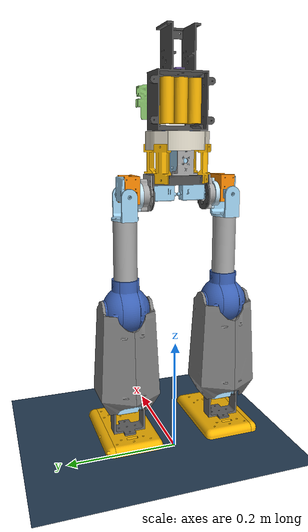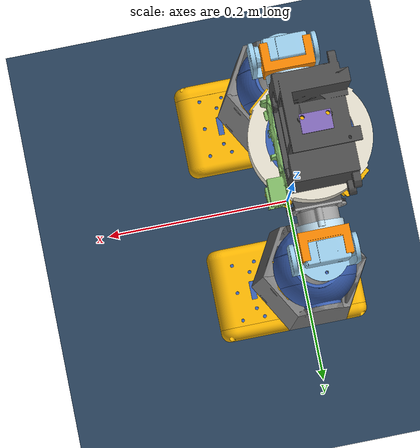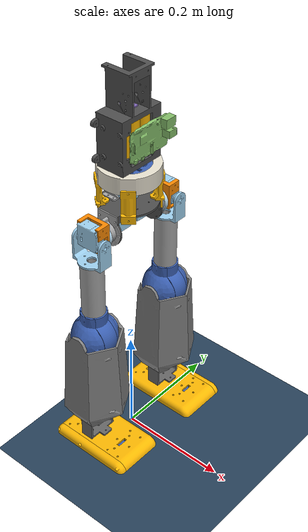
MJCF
<mujoco model="scene">
    <include file="wildrobot.xml" />

    <visual>
        <headlight diffuse="0.6 0.6 0.6" ambient="0.3 0.3 0.3" specular="0 0 0" />
        <rgba haze="0.15 0.25 0.35 1" />
        <global azimuth="160" elevation="-20" offwidth="1920" offheight="1080" />
    </visual>

    <asset>
        <texture type="skybox" builtin="gradient" rgb1="0.3 0.5 0.7" rgb2="0 0 0" width="512" height="3072" />
        <texture type="2d" name="groundplane" builtin="checker" mark="edge" rgb1="0.2 0.3 0.4" rgb2="0.1 0.2 0.3" markrgb="0.8 0.8 0.8" width="300" height="300" />
        <material name="groundplane" texture="groundplane" texuniform="true" texrepeat="5 5" reflectance="0.2" />
    </asset>

    <worldbody>
        <light pos="0 0 3.5" dir="0 0 -1" directional="true" />
        <geom name="floor" size="0 0 0.05" pos="0 0 0" type="plane" material="groundplane" />

        <!-- Cameras for video rendering -->
        <camera name="track" mode="trackcom" pos="0 -2.5 1.0" xyaxes="1 0 0 0 0.3 1" />
        <camera name="side" pos="-2 0 1.0" xyaxes="0 -1 0 0.3 0 1" />
        <camera name="front" pos="0 -3 1.5" xyaxes="1 0 0 0 0.5 1" />
        <camera name="top" pos="0 0 4" xyaxes="1 0 0 0 1 0" />
    </worldbody>

    <include file="keyframes.xml" />

</mujoco>

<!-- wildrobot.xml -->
<mujoco model="WildRobotDev">
  <option>
    <flag eulerdamp="disable" />
  </option>
  <compiler angle="radian" meshdir="assets" autolimits="true" />
  <default>
    <default class="WildRobotDev">
      <joint frictionloss="0.1" armature="0.005" />
      <position kp="50" dampratio="1" />
      <default class="visual">
        <geom type="mesh" contype="0" conaffinity="0" group="2" />
      </default>
      <default class="collision">
        <geom group="3" type="sphere" />
      </default>
    </default>
    <default class="htd45hServo">
      <geom contype="0" conaffinity="0" />
      <joint damping="0.08516" frictionloss="0.022275" armature="0.024992" />
      <position kp="21.1" kv="0.5" forcerange="-4.0 4.0" />
    </default>
    <default class="backlash">
      <joint damping="0.01" frictionloss="0" armature="0.01" limited="true" range="-0.008726646259971648 0.008726646259971648" />
    </default>
  </default>
  <sensor>
    <gyro site="chest_imu" name="chest_imu_gyro" noise="0.0002" cutoff="100" />
    <accelerometer site="chest_imu" name="chest_imu_accel" noise="0.0015" cutoff="100" />
    <magnetometer site="chest_imu" name="chest_imu_mag" noise="0.3" />
    <framequat objtype="site" objname="chest_imu" name="chest_imu_quat" />
    <velocimeter site="pelvis_mimic" name="pelvis_local_linvel" />
  </sensor>
  <worldbody>
    <body name="waist" pos="0 0 0.5" quat="1 0 0 0" childclass="WildRobotDev">
      <freejoint name="waist_freejoint" />
      <inertial pos="0.00207427 0.00159876 0.0785345" mass="1.28083" fullinertia="0.00602084 0.00549671 0.00162867 -0.000111987 -0.00020739 -0.000103631" />
      <geom type="mesh" class="visual" pos="-0.0596393 -0.00143119 -0.0273687" quat="0.706991 0.707223 -0 2.16453e-17" mesh="htd_45h_1circle" material="htd_45h_1circle_material" />
      <geom type="mesh" class="visual" pos="0.000128558 -0.000153209 0.12518" quat="0.34202 -1.65887e-17 2.22045e-16 -0.939693" mesh="waist_trunk_support" material="waist_trunk_support_material" />
      <geom type="mesh" class="visual" pos="-1.8982e-19 0 0" quat="0.707107 0 0 -0.707107" mesh="trunk_bottom" material="trunk_bottom_material" />
      <geom type="mesh" class="visual" pos="-0.00619509 -0.059645 -0.00396881" quat="0.707107 0.000116219 0.000116219 0.707107" mesh="htd_45h_1circle" material="htd_45h_1circle_material" />
      <geom type="mesh" class="visual" pos="5.89806e-17 -3.1225e-17 0" quat="0.707107 0 0 -0.707107" mesh="trunk_servo_connect" material="trunk_servo_connect_material" />
      <geom type="mesh" class="visual" pos="1.38778e-17 -0.00025 1.47949e-17" quat="0.707107 0 -1.11022e-16 0.707107" mesh="hip_cover" material="hip_cover_material" />
      <geom type="mesh" class="visual" pos="-1.59595e-16 -1.66533e-16 0.12518" quat="0.34202 -5.80156e-17 3.5782e-16 -0.939693" mesh="scroll_out" material="scroll_out_material" />
      <geom type="mesh" class="visual" pos="0.000128558 0.000153209 0.12518" quat="0.939693 8.35299e-17 1.95324e-16 -0.34202" mesh="waist_trunk_support" material="waist_trunk_support_material" />
      <geom type="mesh" class="visual" pos="1.38778e-17 -0.0001 1.53661e-17" quat="0.707107 -0 1.11022e-16 0.707107" mesh="hip_trunk_connect" material="hip_trunk_connect_material" />
      <geom type="mesh" class="visual" pos="-0.000128558 -0.000153209 0.12518" quat="0.34202 -0 1.18329e-30 0.939693" mesh="waist_trunk_support" material="waist_trunk_support_material" />
      <geom type="mesh" class="visual" pos="-0.000128558 0.000153209 0.12518" quat="0.939693 0 1.11022e-16 0.34202" mesh="waist_trunk_support" material="waist_trunk_support_material" />
      <geom type="mesh" class="visual" pos="-1.38778e-17 0.00025 1.46954e-17" quat="0.707107 0 1.11022e-16 -0.707107" mesh="hip_cover" material="hip_cover_material" />
      <geom type="mesh" class="visual" pos="0.0596393 0.00143119 -0.0273687" quat="2.16453e-17 0 -0.707223 -0.706991" mesh="htd_45h_1circle" material="htd_45h_1circle_material" />
      <geom type="mesh" class="visual" pos="-1.38778e-17 0.0001 1.3452e-17" quat="0.707107 0 1.11022e-16 -0.707107" mesh="hip_trunk_connect" material="hip_trunk_connect_material" />
      <geom type="mesh" class="visual" pos="-0.21121 0.0233777 0.0810344" quat="0.499502 -0.500498 -0.500085 0.499915" mesh="cell" material="cell_material" />
      <geom type="mesh" class="visual" pos="0.031089 0.00995652 0.116228" quat="0.000704463 0.707107 0.707106 0.000120096" mesh="rp_assemble" material="rp_assemble_material" />
      <geom type="mesh" class="visual" pos="0.023299 -4.3479e-05 0.116227" quat="0.707106 0.000120096 -0.000704463 -0.707107" mesh="batterybox" material="batterybox_material" />
      <geom type="mesh" class="visual" pos="-0.000260321 0.0952486 0.167121" quat="0.000120096 -0.707106 0.707107 -0.000704463" mesh="bno085" material="bno085_material" />
      <geom type="mesh" class="visual" pos="-0.23501 -7.2321e-05 0.0810261" quat="0.499502 -0.500498 -0.500085 0.499915" mesh="cell" material="cell_material" />
      <geom type="mesh" class="visual" pos="-0.23501 -0.0235223 0.0810454" quat="0.499502 -0.500498 -0.500085 0.499915" mesh="cell" material="cell_material" />
      <geom type="mesh" class="visual" pos="-0.000210713 -3.65539e-05 0.124579" quat="0.707107 -0.000704463 -0.000120096 0.707106" mesh="waist_platform" material="waist_platform_material" />
      <geom type="mesh" class="visual" pos="-0.000210713 -3.65539e-05 0.124579" quat="0.707107 -0.000704463 -0.000120096 0.707106" mesh="waist_platform_2" material="waist_platform_2_material" />
      <geom type="mesh" class="visual" pos="-0.23501 0.0233777 0.0810067" quat="0.499502 -0.500498 -0.500085 0.499915" mesh="cell" material="cell_material" />
      <geom type="mesh" class="visual" pos="-0.21121 -0.0235223 0.0810732" quat="0.499502 -0.500498 -0.500085 0.499915" mesh="cell" material="cell_material" />
      <geom type="mesh" class="visual" pos="-0.21121 -7.2321e-05 0.0810538" quat="0.499502 -0.500498 -0.500085 0.499915" mesh="cell" material="cell_material" />
      <site group="3" name="pelvis_mimic" pos="0 0 0" quat="1 0 0 0" />
      <body name="pelvis_mimic" pos="0 0 0" quat="1 0 0 0">
        <inertial pos="0 0 0" mass="0.001" diaginertia="0.000001 0.000001 0.000001" />
      </body>
      <site group="3" name="chest_imu" pos="-0.000260412 0.000259929 0.1672" quat="1 -0.00041321 -0.000583051 -2.40923e-07" />
      <body name="left_hip" pos="-4.74705e-05 0.0536 -0.0335836" quat="0.000292354 -0.000292013 0.707519 -0.706694">
        <joint axis="0 0 1" name="left_hip_pitch" type="hinge" range="-0.08726646259971647 1.5707963267948966" class="htd45hServo" />
        <inertial pos="-0.00291444 -0.00897832 -0.0331054" mass="0.0849728" fullinertia="2.00234e-05 1.92641e-05 2.44282e-05 3.89652e-07 -8.26001e-07 -1.4809e-06" />
        <geom type="mesh" class="visual" pos="-0.0001 -0.03359 0.0566" quat="0.5 0.5 0.5 -0.5" mesh="hip_servo_hook_left" material="hip_servo_hook_left_material" />
        <geom type="mesh" class="visual" pos="0.0252688 -0.0063813 0.0231393" quat="0.000116219 -0.707107 0.000116219 0.707107" mesh="htd_45h_1circle" material="htd_45h_1circle_material" />
        <site group="3" name="left_hip_mimic" pos="0.000428163 -9.99278e-05 -0.0364505" quat="0.00246826 -0.00246826 -0.707102 0.707102" />
        <body name="left_hip_mimic" pos="0.000428163 -9.99278e-05 -0.0364505" quat="0.00246826 -0.00246826 -0.707102 0.707102">
          <inertial pos="0 0 0" mass="0.001" diaginertia="0.000001 0.000001 0.000001" />
        </body>
        <body name="upper_leg" pos="-0.0269 -0.000166429 -0.0365475" quat="0.707399 -0.000412109 0.706814 0.00041245">
          <joint axis="0 0 1" name="left_hip_roll" type="hinge" range="-1.5707963267948966 0.17453292519943295" class="htd45hServo" />
          <inertial pos="-0.00109676 0.15941 0.0267063" mass="0.236565" fullinertia="0.000988751 0.000126498 0.000981911 1.04431e-05 -1.12408e-08 1.05493e-06" />
          <geom type="mesh" class="visual" pos="-0.095 1.73472e-16 0.0267" quat="0.707107 0.707107 -6.50354e-17 -1.85145e-17" mesh="up_leg_servo_connect" material="up_leg_servo_connect_material" />
          <geom type="mesh" class="visual" pos="-0.095 1.66533e-16 0.0267" quat="0.707107 0.707107 -6.50354e-17 -1.93195e-17" mesh="up_leg" material="up_leg_material" />
          <geom type="mesh" class="visual" pos="2.99497e-16 0.174352 0.1872" quat="0.5 0.5 0.5 -0.5" mesh="icm45686" material="icm45686_material" />
          <geom type="mesh" class="visual" pos="-0.095 -0.0002 0.0267" quat="0.707107 0.707107 -1.57009e-16 5.79968e-17" mesh="knee_ball_left" material="knee_ball_left_material" />
          <geom type="mesh" class="visual" pos="-0.095 -0.0002 0.0267" quat="0.707107 0.707107 -6.50354e-17 -1.64829e-17" mesh="knee_ball_mid" material="knee_ball_mid_material" />
          <geom type="mesh" class="visual" pos="0.0251608 0.198828 -0.0329436" quat="0.706814 0.00052828 -0.707399 0.000528717" mesh="htd_45h_1circle" material="htd_45h_1circle_material" />
          <geom type="mesh" class="visual" pos="-0.095 -0.0002 0.0267" quat="0.707107 0.707107 -1.57009e-16 5.54286e-17" mesh="knee_ball_right" material="knee_ball_right_material" />
          <site group="3" name="left_knee_mimic" pos="0.000138461 0.192701 0.0266255" quat="0.49875 0.501659 0.498338 -0.501244" />
          <body name="left_knee_mimic" pos="0.000138461 0.192701 0.0266255" quat="0.49875 0.501659 0.498338 -0.501244">
            <inertial pos="0 0 0" mass="0.001" diaginertia="0.000001 0.000001 0.000001" />
          </body>
          <site group="3" name="left_knee_imu" pos="3.23607e-16 0.173352 0.0264651" quat="0.5 0.5 0.5 -0.5" />
          <body name="lower_leg" pos="-0.02705 0.192552 0.0267" quat="1.11056e-16 0.707107 -2.48983e-16 0.707107">
            <joint axis="0 0 1" name="left_knee_pitch" type="hinge" range="0.0 1.3962634015954636" class="htd45hServo" />
            <inertial pos="-0.000528282 -0.102749 0.0267516" mass="0.37567" fullinertia="0.00172198 0.000666836 0.0016363 1.91588e-05 9.23751e-08 -2.38646e-05" />
            <geom type="mesh" class="visual" pos="-2.18128e-15 0.192752 -0.0677579" quat="0.5 -0.5 -0.5 -0.5" mesh="low_leg_right" material="low_leg_right_material" />
            <geom type="mesh" class="visual" pos="-2.2321e-16 0.192752 -0.0677579" quat="0.5 -0.5 -0.5 -0.5" mesh="low_leg_left" material="low_leg_left_material" />
            <geom type="mesh" class="visual" pos="0.0596393 -0.173769 0.0526109" quat="1.03134e-14 -0 -1 0.000164358" mesh="htd_45h_1circle" material="htd_45h_1circle_material" />
            <site group="3" name="left_ankle_mimic" pos="4.95231e-05 -0.179866 0.0276306" quat="7.2806e-15 -7.32986e-15 -0.704634 -0.709571" />
            <body name="left_ankle_mimic" pos="4.95231e-05 -0.179866 0.0276306" quat="7.2806e-15 -7.32986e-15 -0.704634 -0.709571">
              <inertial pos="0 0 0" mass="0.001" diaginertia="0.000001 0.000001 0.000001" />
            </body>
            <body name="left_foot" pos="-4.74705e-05 -0.179984 0.000442075" quat="2.40923e-07 -0.00041321 0.000583051 -1">
              <joint axis="0 0 1" name="left_ankle_pitch" type="hinge" range="-0.7853981633974412 0.7853981633974554" class="htd45hServo" />
              <inertial pos="0.0186078 0.0510083 0.0268536" mass="0.310386" fullinertia="0.00025356 0.000814648 0.000611298 -1.25185e-05 -1.91893e-06 -1.47746e-06" />
              <geom type="mesh" class="visual" pos="5.38428e-16 0.0732 0.0268" quat="0.5 0.5 -0.5 0.5" mesh="servo_bracket_top" material="servo_bracket_top_material" />
              <geom type="mesh" class="visual" pos="-8.28427e-05 0.0432 0.0278" quat="0.5 0.5 -0.5 0.5" mesh="foot_btm_back" material="foot_btm_back_material" />
              <geom type="mesh" class="collision" pos="-8.28427e-05 0.0432 0.0278" quat="0.5 0.5 -0.5 0.5" mesh="foot_btm_back" material="foot_btm_back_material" name="left_heel" />
              <geom type="mesh" class="visual" pos="2.18873e-16 0.0435 0.0268" quat="0.5 0.5 -0.5 0.5" mesh="foot_side" material="foot_side_material" />
              <geom type="mesh" class="visual" pos="3.04688e-16 0.0435 0.0268" quat="0.5 0.5 -0.5 0.5" mesh="foot_main" material="foot_main_material" />
              <geom type="mesh" class="visual" pos="8.28427e-05 0.0432 0.0278" quat="0.5 0.5 -0.5 0.5" mesh="foot_btm_front" material="foot_btm_front_material" />
              <geom type="mesh" class="collision" pos="8.28427e-05 0.0432 0.0278" quat="0.5 0.5 -0.5 0.5" mesh="foot_btm_front" material="foot_btm_front_material" name="left_toe" />
              <site group="3" name="left_foot_mimic" pos="4.89843e-16 0.066 0.0268" quat="0.707107 0.707107 -1.9301e-15 -2.82214e-15" />
              <body name="left_foot_mimic" pos="4.89843e-16 0.066 0.0268" quat="0.707107 0.707107 -1.9301e-15 -2.82214e-15">
                <inertial pos="0 0 0" mass="0.001" diaginertia="0.000001 0.000001 0.000001" />
              </body>
            </body>
          </body>
        </body>
      </body>
      <body name="right_hip" pos="4.74705e-05 -0.0536 -0.0335836" quat="0.706694 -0.707519 -0.000292013 0.000292354">
        <joint axis="0 0 1" name="right_hip_pitch" type="hinge" range="-1.570796326794894 0.08726646259971914" class="htd45hServo" />
        <inertial pos="0.00272374 -0.00897832 -0.0331404" mass="0.0849728" fullinertia="2.00434e-05 1.92798e-05 2.44237e-05 -3.96751e-07 7.91944e-07 -1.48675e-06" />
        <geom type="mesh" class="visual" pos="-0.0254688 -0.0063813 -0.0961393" quat="0.000116219 -0.707107 -0.000116219 -0.707107" mesh="htd_45h_1circle" material="htd_45h_1circle_material" />
        <geom type="mesh" class="visual" pos="-0.0001 -0.03359 0.0566" quat="0.5 0.5 -0.5 0.5" mesh="hip_servo_hook_right" material="hip_servo_hook_right_material" />
        <site group="3" name="right_hip_mimic" pos="-0.000628163 -9.99278e-05 -0.0365495" quat="0.707102 0.707102 0.00246826 0.00246826" />
        <body name="right_hip_mimic" pos="-0.000628163 -9.99278e-05 -0.0365495" quat="0.707102 0.707102 0.00246826 0.00246826">
          <inertial pos="0 0 0" mass="0.001" diaginertia="0.000001 0.000001 0.000001" />
        </body>
        <body name="upper_leg_2" pos="0.0267 -0.000166429 -0.0364525" quat="0.706814 -0.00041245 -0.707399 -0.000412109">
          <joint axis="0 0 1" name="right_hip_roll" type="hinge" range="-0.17453292519943206 1.5707963267948974" class="htd45hServo" />
          <inertial pos="-0.00109676 0.15941 0.0267063" mass="0.236565" fullinertia="0.000988751 0.000126498 0.000981911 1.04431e-05 -1.12408e-08 1.05493e-06" />
          <geom type="mesh" class="visual" pos="-2.48337e-15 0.174352 0.1872" quat="0.5 0.5 0.5 -0.5" mesh="icm45686" material="icm45686_material" />
          <geom type="mesh" class="visual" pos="-0.095 -0.0002 0.0267" quat="0.707107 0.707107 1.37961e-16 -1.34921e-16" mesh="knee_ball_left" material="knee_ball_left_material" />
          <geom type="mesh" class="visual" pos="-0.095 -0.0002 0.0267" quat="0.707107 0.707107 2.48983e-16 -8.76543e-17" mesh="knee_ball_mid" material="knee_ball_mid_material" />
          <geom type="mesh" class="visual" pos="0.0251608 0.198828 -0.0329436" quat="0.706814 0.00052828 -0.707399 0.000528717" mesh="htd_45h_1circle" material="htd_45h_1circle_material" />
          <geom type="mesh" class="visual" pos="-0.095 -0.0002 0.0267" quat="0.707107 0.707107 2.48983e-16 -8.22828e-17" mesh="knee_ball_right" material="knee_ball_right_material" />
          <geom type="mesh" class="visual" pos="-0.095 9.64506e-16 0.0267" quat="0.707107 0.707107 1.11022e-16 -4.91485e-18" mesh="up_leg_servo_connect" material="up_leg_servo_connect_material" />
          <geom type="mesh" class="visual" pos="-0.095 9.71445e-16 0.0267" quat="0.707107 0.707107 1.11022e-16 3.29151e-18" mesh="up_leg" material="up_leg_material" />
          <site group="3" name="right_knee_mimic" pos="0.000138461 0.192701 0.0266255" quat="0.49875 0.501659 0.498338 -0.501244" />
          <body name="right_knee_mimic" pos="0.000138461 0.192701 0.0266255" quat="0.49875 0.501659 0.498338 -0.501244">
            <inertial pos="0 0 0" mass="0.001" diaginertia="0.000001 0.000001 0.000001" />
          </body>
          <site group="3" name="right_knee_imu" pos="-2.49524e-15 0.173352 0.0264651" quat="0.5 0.5 0.5 -0.5" />
          <body name="lower_leg_2" pos="-0.02705 0.192552 0.0267" quat="1.95341e-15 0.707107 1.84139e-15 0.707107">
            <joint axis="0 0 1" name="right_knee_pitch" type="hinge" range="0.0 1.3962634015954636" class="htd45hServo" />
            <inertial pos="-0.000528282 -0.102749 0.0267516" mass="0.37567" fullinertia="0.00172198 0.000666836 0.0016363 1.91588e-05 9.23751e-08 -2.38646e-05" />
            <geom type="mesh" class="visual" pos="-2.19193e-15 0.192752 -0.0677579" quat="0.5 -0.5 -0.5 -0.5" mesh="low_leg_right" material="low_leg_right_material" />
            <geom type="mesh" class="visual" pos="5.48173e-16 0.192752 -0.0677579" quat="0.5 -0.5 -0.5 -0.5" mesh="low_leg_left" material="low_leg_left_material" />
            <geom type="mesh" class="visual" pos="0.0596393 -0.173769 0.0526109" quat="6.85206e-15 1.77073e-15 -1 0.000164358" mesh="htd_45h_1circle" material="htd_45h_1circle_material" />
            <site group="3" name="right_ankle_mimic" pos="4.95231e-05 -0.179866 0.0276306" quat="6.24883e-15 -3.66263e-15 -0.704634 -0.709571" />
            <body name="right_ankle_mimic" pos="4.95231e-05 -0.179866 0.0276306" quat="6.24883e-15 -3.66263e-15 -0.704634 -0.709571">
              <inertial pos="0 0 0" mass="0.001" diaginertia="0.000001 0.000001 0.000001" />
            </body>
            <body name="right_foot" pos="-4.74705e-05 -0.179984 0.000442075" quat="2.40923e-07 -0.00041321 0.000583051 -1">
              <joint axis="0 0 1" name="right_ankle_pitch" type="hinge" range="-0.7853981633974385 0.785398163397458" class="htd45hServo" />
              <inertial pos="0.0185686 0.0510083 0.0265336" mass="0.310386" fullinertia="0.000253539 0.000813694 0.000610365 -1.24604e-05 6.8118e-07 -3.14799e-07" />
              <geom type="mesh" class="visual" pos="6.37511e-17 0.0435 0.1868" quat="0.5 0.5 -0.5 0.5" mesh="foot_main_right" material="foot_main_right_material" />
              <geom type="mesh" class="visual" pos="-8.28427e-05 0.0432 0.0258" quat="0.5 0.5 -0.5 0.5" mesh="foot_btm_front" material="foot_btm_front_material" />
              <geom type="mesh" class="collision" pos="-8.28427e-05 0.0432 0.0258" quat="0.5 0.5 -0.5 0.5" mesh="foot_btm_front" material="foot_btm_front_material" name="right_toe" />
              <geom type="mesh" class="visual" pos="-2.8089e-16 0.0732 0.0268" quat="0.5 0.5 -0.5 0.5" mesh="servo_bracket_top" material="servo_bracket_top_material" />
              <geom type="mesh" class="visual" pos="-6.75458e-17 0.0435 0.1868" quat="0.5 0.5 -0.5 0.5" mesh="foot_side_right" material="foot_side_right_material" />
              <geom type="mesh" class="visual" pos="-8.28427e-05 0.0432 0.0258" quat="0.5 0.5 -0.5 0.5" mesh="foot_btm_back" material="foot_btm_back_material" />
              <geom type="mesh" class="collision" pos="-8.28427e-05 0.0432 0.0258" quat="0.5 0.5 -0.5 0.5" mesh="foot_btm_back" material="foot_btm_back_material" name="right_heel" />
              <site group="3" name="right_foot_mimic" pos="-2.54354e-16 0.066 0.0268" quat="0.707107 0.707107 2.71841e-15 -4.03138e-16" />
              <body name="right_foot_mimic" pos="-2.54354e-16 0.066 0.0268" quat="0.707107 0.707107 2.71841e-15 -4.03138e-16">
                <inertial pos="0 0 0" mass="0.001" diaginertia="0.000001 0.000001 0.000001" />
              </body>
            </body>
          </body>
        </body>
      </body>
    </body>
  </worldbody>
  <asset>
    <mesh file="cell.stl" />
    <mesh file="foot_btm_back.stl" />
    <mesh file="low_leg_right.stl" />
    <mesh file="low_leg_left.stl" />
    <mesh file="scroll_out.stl" />
    <mesh file="htd_45h_1circle.stl" />
    <mesh file="trunk_servo_connect.stl" />
    <mesh file="knee_ball_right.stl" />
    <mesh file="foot_side_right.stl" />
    <mesh file="hip_trunk_connect.stl" />
    <mesh file="waist_trunk_support.stl" />
    <mesh file="up_leg.stl" />
    <mesh file="trunk_bottom.stl" />
    <mesh file="waist_platform.stl" />
    <mesh file="foot_side.stl" />
    <mesh file="waist_platform_2.stl" />
    <mesh file="foot_btm_front.stl" />
    <mesh file="bno085.stl" />
    <mesh file="hip_servo_hook_left.stl" />
    <mesh file="servo_bracket_top.stl" />
    <mesh file="knee_ball_left.stl" />
    <mesh file="hip_servo_hook_right.stl" />
    <mesh file="up_leg_servo_connect.stl" />
    <mesh file="knee_ball_mid.stl" />
    <mesh file="batterybox.stl" />
    <mesh file="icm45686.stl" />
    <mesh file="foot_main.stl" />
    <mesh file="foot_main_right.stl" />
    <mesh file="rp_assemble.stl" />
    <mesh file="hip_cover.stl" />
    <material name="htd_45h_1circle_material" rgba="0.615686 0.811765 0.929412 1" />
    <material name="waist_trunk_support_material" rgba="0.980392 0.713725 0.00392157 1" />
    <material name="trunk_bottom_material" rgba="0.301961 0.301961 0.301961 1" />
    <material name="trunk_servo_connect_material" rgba="0.647059 0.647059 0.647059 1" />
    <material name="hip_cover_material" rgba="0.768627 0.886275 0.952941 1" />
    <material name="scroll_out_material" rgba="0.901961 0.878431 0.811765 1" />
    <material name="hip_trunk_connect_material" rgba="0.647059 0.647059 0.647059 1" />
    <material name="cell_material" rgba="0.980392 0.713725 0.00392157 1" />
    <material name="rp_assemble_material" rgba="0.513725 0.737255 0.407843 1" />
    <material name="batterybox_material" rgba="0.301961 0.301961 0.301961 1" />
    <material name="bno085_material" rgba="0.513725 0.415686 0.733333 1" />
    <material name="waist_platform_material" rgba="0.231373 0.380392 0.705882 1" />
    <material name="waist_platform_2_material" rgba="0.231373 0.380392 0.705882 1" />
    <material name="hip_servo_hook_left_material" rgba="0.972549 0.529412 0.00392157 1" />
    <material name="up_leg_servo_connect_material" rgba="0.615686 0.811765 0.929412 1" />
    <material name="up_leg_material" rgba="0.647059 0.647059 0.647059 1" />
    <material name="icm45686_material" rgba="0.301961 0.301961 0.301961 1" />
    <material name="knee_ball_left_material" rgba="0.231373 0.380392 0.705882 1" />
    <material name="knee_ball_mid_material" rgba="0.231373 0.380392 0.705882 1" />
    <material name="knee_ball_right_material" rgba="0.231373 0.380392 0.705882 1" />
    <material name="low_leg_right_material" rgba="0.498039 0.498039 0.498039 1" />
    <material name="low_leg_left_material" rgba="0.498039 0.498039 0.498039 1" />
    <material name="servo_bracket_top_material" rgba="0.4 0.4 0.4 1" />
    <material name="foot_btm_back_material" rgba="0.768627 0.886275 0.952941 1" />
    <material name="foot_side_material" rgba="0.980392 0.713725 0.00392157 1" />
    <material name="foot_main_material" rgba="0.980392 0.713725 0.00392157 1" />
    <material name="foot_btm_front_material" rgba="0.231373 0.380392 0.705882 1" />
    <material name="hip_servo_hook_right_material" rgba="0.972549 0.529412 0.00392157 1" />
    <material name="foot_main_right_material" rgba="0.980392 0.713725 0.00392157 1" />
    <material name="foot_side_right_material" rgba="0.980392 0.713725 0.00392157 1" />
  </asset>
  <actuator>
    <position class="htd45hServo" name="left_hip_pitch" joint="left_hip_pitch" inheritrange="1" />
    <position class="htd45hServo" name="left_hip_roll" joint="left_hip_roll" inheritrange="1" />
    <position class="htd45hServo" name="left_knee_pitch" joint="left_knee_pitch" inheritrange="1" />
    <position class="htd45hServo" name="left_ankle_pitch" joint="left_ankle_pitch" inheritrange="1" />
    <position class="htd45hServo" name="right_hip_pitch" joint="right_hip_pitch" inheritrange="1" />
    <position class="htd45hServo" name="right_hip_roll" joint="right_hip_roll" inheritrange="1" />
    <position class="htd45hServo" name="right_knee_pitch" joint="right_knee_pitch" inheritrange="1" />
    <position class="htd45hServo" name="right_ankle_pitch" joint="right_ankle_pitch" inheritrange="1" />
  </actuator>
  <equality />
</mujoco>

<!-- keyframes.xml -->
<mujoco>
    <keyframe>
        <!-- Standing pose with slight knee bend (stable default)
             This is the pose the robot resets to at episode start.
             Height ~0.47m with slight forward lean for stability.
        -->
        <key name="home"
             qpos="0.00127202 -8.96333e-05 0.468308 0.999998 8.29459e-06 0.00194255 -0.000223249 0.000983088 0.000749196 -2.83878e-05 -0.00172544 -0.000960849 -0.00123187 -3.0451e-05 -0.00175171"/>
        <!-- T-pose for visualization/debugging
             All joints at zero, robot standing upright at 0.5m height.
        -->
        <key name="t_pose"
             qpos="0 0 0.5
                   1 0 0 0
                   0 0 0 0
                   0 0 0 0"/>

        <!-- Squat pose for sit-to-stand training (future use)
             Lower height with bent knees.
        -->
        <key name="squat"
             qpos="0 0 0.35
                   1 0 0 0
                   0.3 0 0.8 -0.5
                   0.3 0 0.8 -0.5"/>
    </keyframe>
</mujoco>
